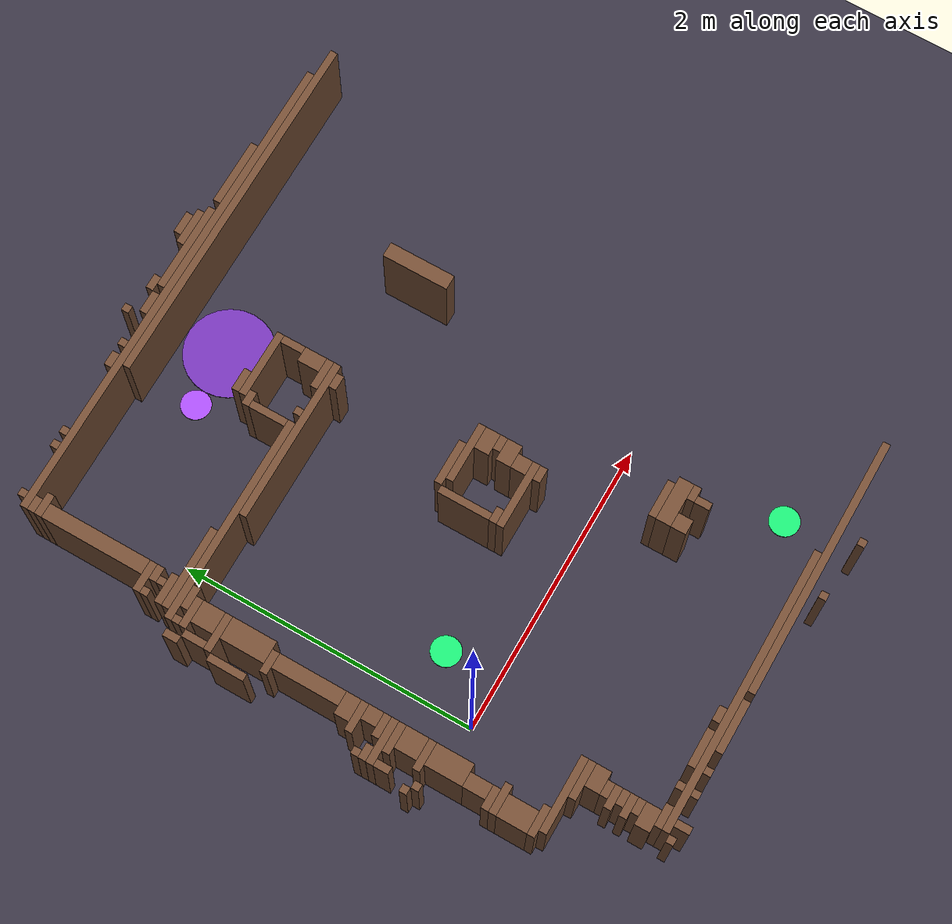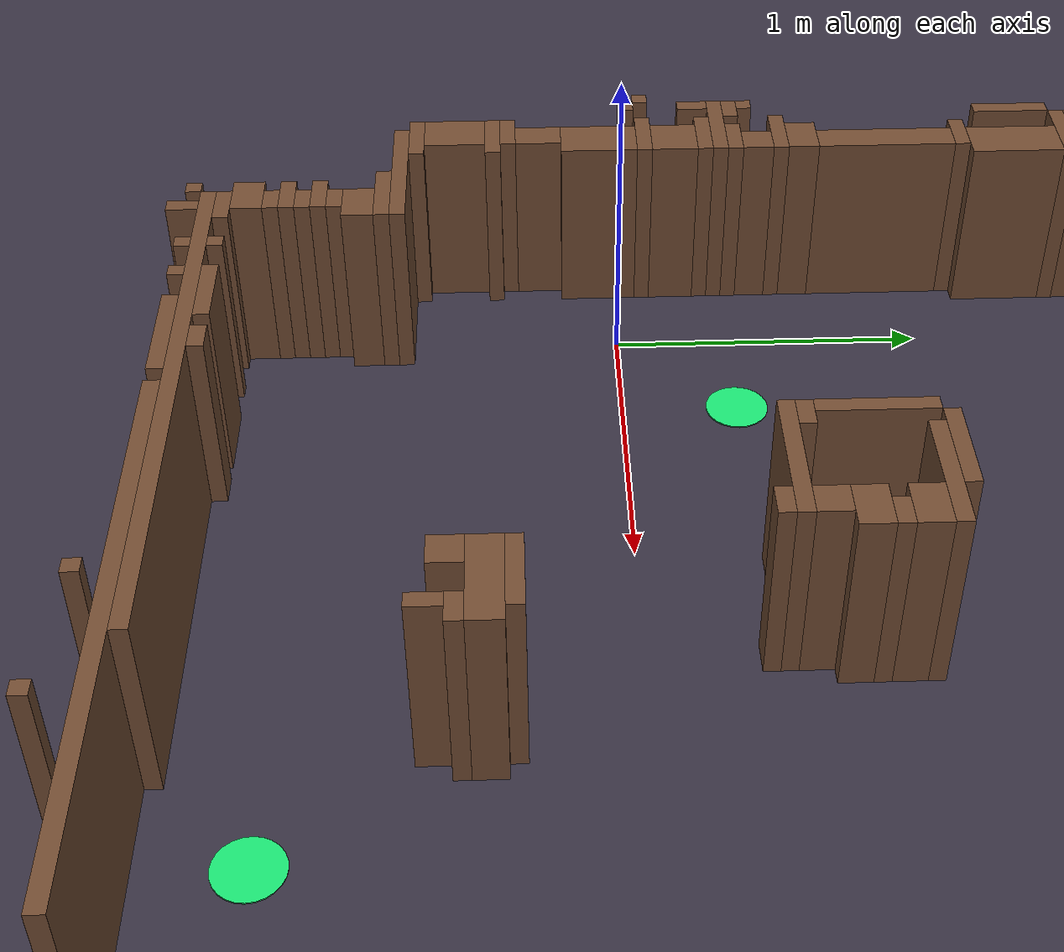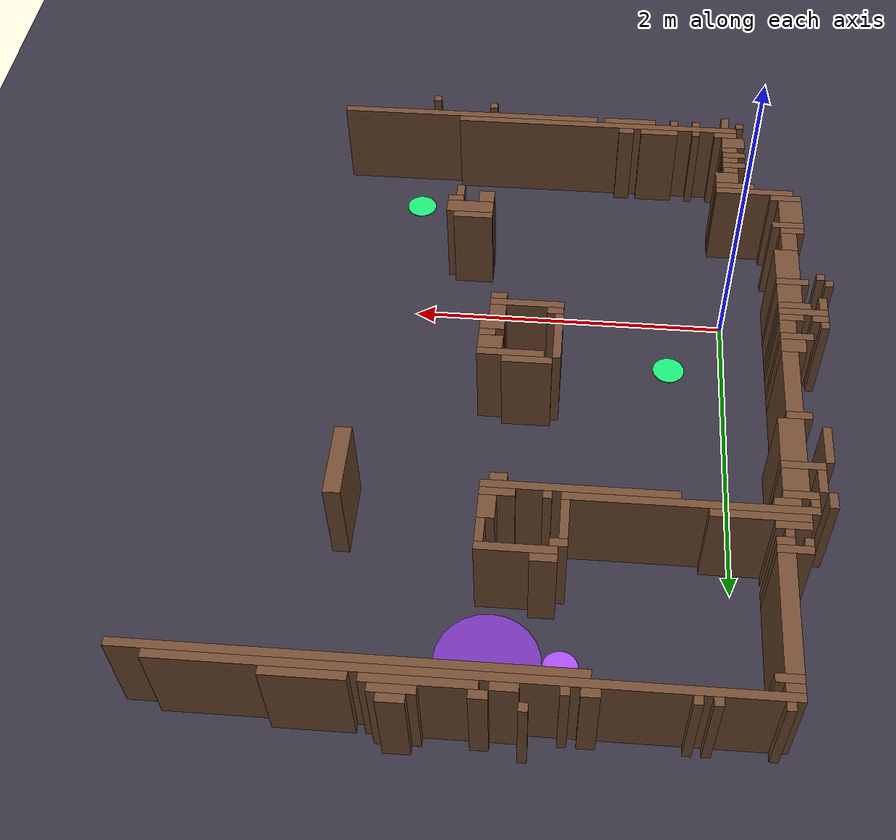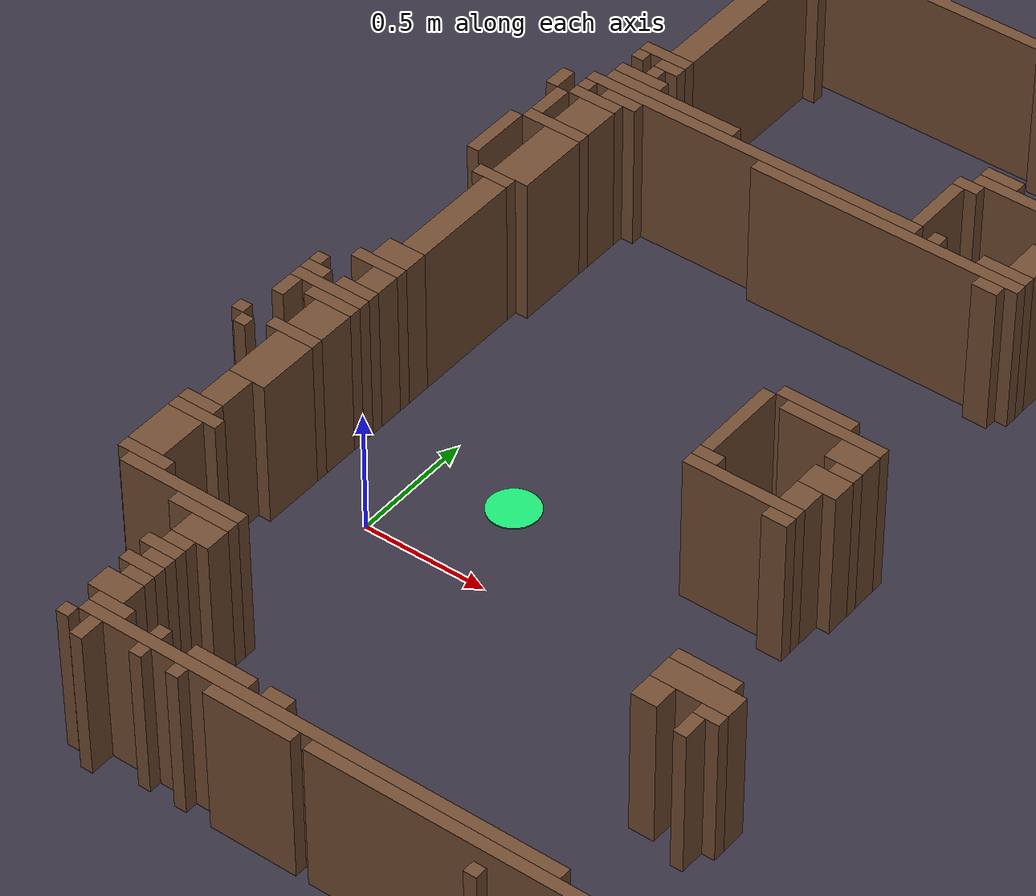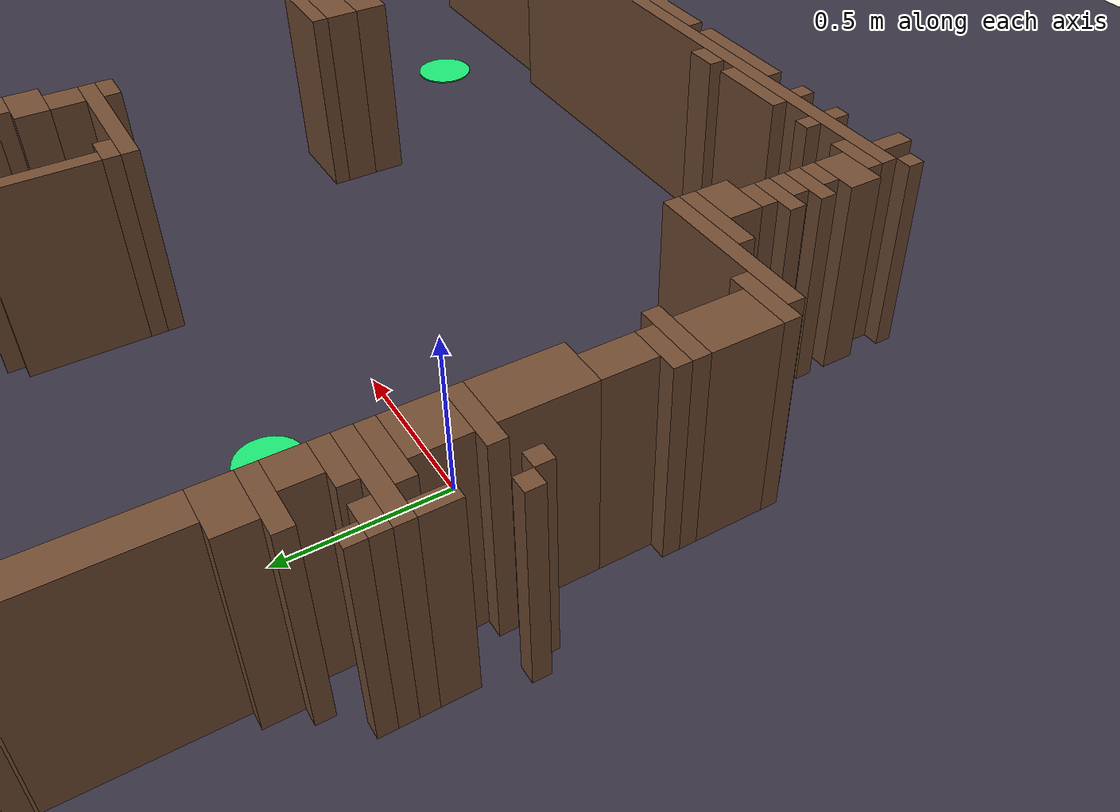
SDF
<sdf version="1.8">
 <world name="holloween">
  <model name="ground_plane">
   <static>true</static>
   <link name="link">
    <collision name="collision">
     <geometry><plane><normal>0 0 1</normal><size>100 100</size></plane></geometry>
    </collision>
    <visual name="visual">
     <geometry><plane><normal>0 0 1</normal><size>100 100</size></plane></geometry>
     <material><ambient>0.22 0.2 0.26 1</ambient><diffuse>0.22 0.2 0.26 1</diffuse></material>
    </visual>
   </link>
  </model>
  <model name="wall_0">
   <static>true</static>
   <pose>1.103 3.049 0.300 0 0 0</pose>
   <link name="l">
    <collision name="c"><geometry><box><size>0.050 0.050 0.600</size></box></geometry></collision>
    <visual name="v">
     <geometry><box><size>0.050 0.050 0.600</size></box></geometry>
     <material><ambient>0.45 0.3 0.2 1</ambient><diffuse>0.45 0.3 0.2 1</diffuse></material>
    </visual>
   </link>
  </model>
  <model name="wall_1">
   <static>true</static>
   <pose>1.753 3.049 0.300 0 0 0</pose>
   <link name="l">
    <collision name="c"><geometry><box><size>0.150 0.050 0.600</size></box></geometry></collision>
    <visual name="v">
     <geometry><box><size>0.150 0.050 0.600</size></box></geometry>
     <material><ambient>0.45 0.3 0.2 1</ambient><diffuse>0.45 0.3 0.2 1</diffuse></material>
    </visual>
   </link>
  </model>
  <model name="wall_2">
   <static>true</static>
   <pose>1.328 2.999 0.300 0 0 0</pose>
   <link name="l">
    <collision name="c"><geometry><box><size>0.100 0.050 0.600</size></box></geometry></collision>
    <visual name="v">
     <geometry><box><size>0.100 0.050 0.600</size></box></geometry>
     <material><ambient>0.45 0.3 0.2 1</ambient><diffuse>0.45 0.3 0.2 1</diffuse></material>
    </visual>
   </link>
  </model>
  <model name="wall_3">
   <static>true</static>
   <pose>1.753 2.999 0.300 0 0 0</pose>
   <link name="l">
    <collision name="c"><geometry><box><size>0.250 0.050 0.600</size></box></geometry></collision>
    <visual name="v">
     <geometry><box><size>0.250 0.050 0.600</size></box></geometry>
     <material><ambient>0.45 0.3 0.2 1</ambient><diffuse>0.45 0.3 0.2 1</diffuse></material>
    </visual>
   </link>
  </model>
  <model name="wall_4">
   <static>true</static>
   <pose>-0.197 2.949 0.300 0 0 0</pose>
   <link name="l">
    <collision name="c"><geometry><box><size>0.050 0.050 0.600</size></box></geometry></collision>
    <visual name="v">
     <geometry><box><size>0.050 0.050 0.600</size></box></geometry>
     <material><ambient>0.45 0.3 0.2 1</ambient><diffuse>0.45 0.3 0.2 1</diffuse></material>
    </visual>
   </link>
  </model>
  <model name="wall_6">
   <static>true</static>
   <pose>1.628 2.949 0.300 0 0 0</pose>
   <link name="l">
    <collision name="c"><geometry><box><size>0.600 0.050 0.600</size></box></geometry></collision>
    <visual name="v">
     <geometry><box><size>0.600 0.050 0.600</size></box></geometry>
     <material><ambient>0.45 0.3 0.2 1</ambient><diffuse>0.45 0.3 0.2 1</diffuse></material>
    </visual>
   </link>
  </model>
  <model name="wall_7">
   <static>true</static>
   <pose>1.203 2.949 0.300 0 0 0</pose>
   <link name="l">
    <collision name="c"><geometry><box><size>0.150 0.050 0.600</size></box></geometry></collision>
    <visual name="v">
     <geometry><box><size>0.150 0.050 0.600</size></box></geometry>
     <material><ambient>0.45 0.3 0.2 1</ambient><diffuse>0.45 0.3 0.2 1</diffuse></material>
    </visual>
   </link>
  </model>
  <model name="wall_8">
   <static>true</static>
   <pose>2.203 2.949 0.300 0 0 0</pose>
   <link name="l">
    <collision name="c"><geometry><box><size>0.450 0.050 0.600</size></box></geometry></collision>
    <visual name="v">
     <geometry><box><size>0.450 0.050 0.600</size></box></geometry>
     <material><ambient>0.45 0.3 0.2 1</ambient><diffuse>0.45 0.3 0.2 1</diffuse></material>
    </visual>
   </link>
  </model>
  <model name="wall_9">
   <static>true</static>
   <pose>0.253 2.949 0.300 0 0 0</pose>
   <link name="l">
    <collision name="c"><geometry><box><size>0.050 0.050 0.600</size></box></geometry></collision>
    <visual name="v">
     <geometry><box><size>0.050 0.050 0.600</size></box></geometry>
     <material><ambient>0.45 0.3 0.2 1</ambient><diffuse>0.45 0.3 0.2 1</diffuse></material>
    </visual>
   </link>
  </model>
  <model name="wall_10">
   <static>true</static>
   <pose>0.903 2.949 0.300 0 0 0</pose>
   <link name="l">
    <collision name="c"><geometry><box><size>0.050 0.050 0.600</size></box></geometry></collision>
    <visual name="v">
     <geometry><box><size>0.050 0.050 0.600</size></box></geometry>
     <material><ambient>0.45 0.3 0.2 1</ambient><diffuse>0.45 0.3 0.2 1</diffuse></material>
    </visual>
   </link>
  </model>
  <model name="wall_11">
   <static>true</static>
   <pose>0.778 2.949 0.300 0 0 0</pose>
   <link name="l">
    <collision name="c"><geometry><box><size>0.100 0.050 0.600</size></box></geometry></collision>
    <visual name="v">
     <geometry><box><size>0.100 0.050 0.600</size></box></geometry>
     <material><ambient>0.45 0.3 0.2 1</ambient><diffuse>0.45 0.3 0.2 1</diffuse></material>
    </visual>
   </link>
  </model>
  <model name="wall_12">
   <static>true</static>
   <pose>0.153 2.949 0.300 0 0 0</pose>
   <link name="l">
    <collision name="c"><geometry><box><size>0.050 0.050 0.600</size></box></geometry></collision>
    <visual name="v">
     <geometry><box><size>0.050 0.050 0.600</size></box></geometry>
     <material><ambient>0.45 0.3 0.2 1</ambient><diffuse>0.45 0.3 0.2 1</diffuse></material>
    </visual>
   </link>
  </model>
  <model name="wall_13">
   <static>true</static>
   <pose>1.378 2.899 0.300 0 0 0</pose>
   <link name="l">
    <collision name="c"><geometry><box><size>3.300 0.050 0.600</size></box></geometry></collision>
    <visual name="v">
     <geometry><box><size>3.300 0.050 0.600</size></box></geometry>
     <material><ambient>0.45 0.3 0.2 1</ambient><diffuse>0.45 0.3 0.2 1</diffuse></material>
    </visual>
   </link>
  </model>
  <model name="wall_14">
   <static>true</static>
   <pose>2.003 2.849 0.300 0 0 0</pose>
   <link name="l">
    <collision name="c"><geometry><box><size>2.450 0.050 0.600</size></box></geometry></collision>
    <visual name="v">
     <geometry><box><size>2.450 0.050 0.600</size></box></geometry>
     <material><ambient>0.45 0.3 0.2 1</ambient><diffuse>0.45 0.3 0.2 1</diffuse></material>
    </visual>
   </link>
  </model>
  <model name="wall_15">
   <static>true</static>
   <pose>-0.222 2.849 0.300 0 0 0</pose>
   <link name="l">
    <collision name="c"><geometry><box><size>0.100 0.050 0.600</size></box></geometry></collision>
    <visual name="v">
     <geometry><box><size>0.100 0.050 0.600</size></box></geometry>
     <material><ambient>0.45 0.3 0.2 1</ambient><diffuse>0.45 0.3 0.2 1</diffuse></material>
    </visual>
   </link>
  </model>
  <model name="wall_16">
   <static>true</static>
   <pose>-0.197 2.799 0.300 0 0 0</pose>
   <link name="l">
    <collision name="c"><geometry><box><size>0.150 0.050 0.600</size></box></geometry></collision>
    <visual name="v">
     <geometry><box><size>0.150 0.050 0.600</size></box></geometry>
     <material><ambient>0.45 0.3 0.2 1</ambient><diffuse>0.45 0.3 0.2 1</diffuse></material>
    </visual>
   </link>
  </model>
  <model name="wall_23">
   <static>true</static>
   <pose>1.053 2.199 0.300 0 0 0</pose>
   <link name="l">
    <collision name="c"><geometry><box><size>0.150 0.050 0.600</size></box></geometry></collision>
    <visual name="v">
     <geometry><box><size>0.150 0.050 0.600</size></box></geometry>
     <material><ambient>0.45 0.3 0.2 1</ambient><diffuse>0.45 0.3 0.2 1</diffuse></material>
    </visual>
   </link>
  </model>
  <model name="wall_24">
   <static>true</static>
   <pose>1.203 2.149 0.300 0 0 0</pose>
   <link name="l">
    <collision name="c"><geometry><box><size>0.450 0.050 0.600</size></box></geometry></collision>
    <visual name="v">
     <geometry><box><size>0.450 0.050 0.600</size></box></geometry>
     <material><ambient>0.45 0.3 0.2 1</ambient><diffuse>0.45 0.3 0.2 1</diffuse></material>
    </visual>
   </link>
  </model>
  <model name="wall_25">
   <static>true</static>
   <pose>-0.222 2.424 0.300 0 0 0</pose>
   <link name="l">
    <collision name="c"><geometry><box><size>0.100 0.700 0.600</size></box></geometry></collision>
    <visual name="v">
     <geometry><box><size>0.100 0.700 0.600</size></box></geometry>
     <material><ambient>0.45 0.3 0.2 1</ambient><diffuse>0.45 0.3 0.2 1</diffuse></material>
    </visual>
   </link>
  </model>
  <model name="wall_27">
   <static>true</static>
   <pose>0.978 2.099 0.300 0 0 0</pose>
   <link name="l">
    <collision name="c"><geometry><box><size>0.100 0.050 0.600</size></box></geometry></collision>
    <visual name="v">
     <geometry><box><size>0.100 0.050 0.600</size></box></geometry>
     <material><ambient>0.45 0.3 0.2 1</ambient><diffuse>0.45 0.3 0.2 1</diffuse></material>
    </visual>
   </link>
  </model>
  <model name="wall_29">
   <static>true</static>
   <pose>-0.272 2.049 0.300 0 0 0</pose>
   <link name="l">
    <collision name="c"><geometry><box><size>0.200 0.050 0.600</size></box></geometry></collision>
    <visual name="v">
     <geometry><box><size>0.200 0.050 0.600</size></box></geometry>
     <material><ambient>0.45 0.3 0.2 1</ambient><diffuse>0.45 0.3 0.2 1</diffuse></material>
    </visual>
   </link>
  </model>
  <model name="wall_32">
   <static>true</static>
   <pose>1.403 2.049 0.300 0 0 0</pose>
   <link name="l">
    <collision name="c"><geometry><box><size>0.050 0.150 0.600</size></box></geometry></collision>
    <visual name="v">
     <geometry><box><size>0.050 0.150 0.600</size></box></geometry>
     <material><ambient>0.45 0.3 0.2 1</ambient><diffuse>0.45 0.3 0.2 1</diffuse></material>
    </visual>
   </link>
  </model>
  <model name="wall_33">
   <static>true</static>
   <pose>-0.222 1.999 0.300 0 0 0</pose>
   <link name="l">
    <collision name="c"><geometry><box><size>0.100 0.050 0.600</size></box></geometry></collision>
    <visual name="v">
     <geometry><box><size>0.100 0.050 0.600</size></box></geometry>
     <material><ambient>0.45 0.3 0.2 1</ambient><diffuse>0.45 0.3 0.2 1</diffuse></material>
    </visual>
   </link>
  </model>
  <model name="wall_34">
   <static>true</static>
   <pose>-0.347 1.999 0.300 0 0 0</pose>
   <link name="l">
    <collision name="c"><geometry><box><size>0.050 0.050 0.600</size></box></geometry></collision>
    <visual name="v">
     <geometry><box><size>0.050 0.050 0.600</size></box></geometry>
     <material><ambient>0.45 0.3 0.2 1</ambient><diffuse>0.45 0.3 0.2 1</diffuse></material>
    </visual>
   </link>
  </model>
  <model name="wall_36">
   <static>true</static>
   <pose>-0.247 1.949 0.300 0 0 0</pose>
   <link name="l">
    <collision name="c"><geometry><box><size>0.050 0.050 0.600</size></box></geometry></collision>
    <visual name="v">
     <geometry><box><size>0.050 0.050 0.600</size></box></geometry>
     <material><ambient>0.45 0.3 0.2 1</ambient><diffuse>0.45 0.3 0.2 1</diffuse></material>
    </visual>
   </link>
  </model>
  <model name="wall_41">
   <static>true</static>
   <pose>-0.272 1.899 0.300 0 0 0</pose>
   <link name="l">
    <collision name="c"><geometry><box><size>0.200 0.050 0.600</size></box></geometry></collision>
    <visual name="v">
     <geometry><box><size>0.200 0.050 0.600</size></box></geometry>
     <material><ambient>0.45 0.3 0.2 1</ambient><diffuse>0.45 0.3 0.2 1</diffuse></material>
    </visual>
   </link>
  </model>
  <model name="wall_44">
   <static>true</static>
   <pose>0.953 1.949 0.300 0 0 0</pose>
   <link name="l">
    <collision name="c"><geometry><box><size>0.050 0.250 0.600</size></box></geometry></collision>
    <visual name="v">
     <geometry><box><size>0.050 0.250 0.600</size></box></geometry>
     <material><ambient>0.45 0.3 0.2 1</ambient><diffuse>0.45 0.3 0.2 1</diffuse></material>
    </visual>
   </link>
  </model>
  <model name="wall_45">
   <static>true</static>
   <pose>1.378 1.899 0.300 0 0 0</pose>
   <link name="l">
    <collision name="c"><geometry><box><size>0.100 0.150 0.600</size></box></geometry></collision>
    <visual name="v">
     <geometry><box><size>0.100 0.150 0.600</size></box></geometry>
     <material><ambient>0.45 0.3 0.2 1</ambient><diffuse>0.45 0.3 0.2 1</diffuse></material>
    </visual>
   </link>
  </model>
  <model name="wall_46">
   <static>true</static>
   <pose>-0.097 1.849 0.300 0 0 0</pose>
   <link name="l">
    <collision name="c"><geometry><box><size>0.550 0.050 0.600</size></box></geometry></collision>
    <visual name="v">
     <geometry><box><size>0.550 0.050 0.600</size></box></geometry>
     <material><ambient>0.45 0.3 0.2 1</ambient><diffuse>0.45 0.3 0.2 1</diffuse></material>
    </visual>
   </link>
  </model>
  <model name="wall_48">
   <static>true</static>
   <pose>1.328 1.799 0.300 0 0 0</pose>
   <link name="l">
    <collision name="c"><geometry><box><size>0.200 0.050 0.600</size></box></geometry></collision>
    <visual name="v">
     <geometry><box><size>0.200 0.050 0.600</size></box></geometry>
     <material><ambient>0.45 0.3 0.2 1</ambient><diffuse>0.45 0.3 0.2 1</diffuse></material>
    </visual>
   </link>
  </model>
  <model name="wall_49">
   <static>true</static>
   <pose>0.278 1.799 0.300 0 0 0</pose>
   <link name="l">
    <collision name="c"><geometry><box><size>1.400 0.050 0.600</size></box></geometry></collision>
    <visual name="v">
     <geometry><box><size>1.400 0.050 0.600</size></box></geometry>
     <material><ambient>0.45 0.3 0.2 1</ambient><diffuse>0.45 0.3 0.2 1</diffuse></material>
    </visual>
   </link>
  </model>
  <model name="wall_50">
   <static>true</static>
   <pose>1.053 1.799 0.300 0 0 0</pose>
   <link name="l">
    <collision name="c"><geometry><box><size>0.050 0.050 0.600</size></box></geometry></collision>
    <visual name="v">
     <geometry><box><size>0.050 0.050 0.600</size></box></geometry>
     <material><ambient>0.45 0.3 0.2 1</ambient><diffuse>0.45 0.3 0.2 1</diffuse></material>
    </visual>
   </link>
  </model>
  <model name="wall_52">
   <static>true</static>
   <pose>-0.247 1.749 0.300 0 0 0</pose>
   <link name="l">
    <collision name="c"><geometry><box><size>0.150 0.050 0.600</size></box></geometry></collision>
    <visual name="v">
     <geometry><box><size>0.150 0.050 0.600</size></box></geometry>
     <material><ambient>0.45 0.3 0.2 1</ambient><diffuse>0.45 0.3 0.2 1</diffuse></material>
    </visual>
   </link>
  </model>
  <model name="wall_54">
   <static>true</static>
   <pose>0.878 1.749 0.300 0 0 0</pose>
   <link name="l">
    <collision name="c"><geometry><box><size>1.100 0.050 0.600</size></box></geometry></collision>
    <visual name="v">
     <geometry><box><size>1.100 0.050 0.600</size></box></geometry>
     <material><ambient>0.45 0.3 0.2 1</ambient><diffuse>0.45 0.3 0.2 1</diffuse></material>
    </visual>
   </link>
  </model>
  <model name="wall_55">
   <static>true</static>
   <pose>-0.397 1.749 0.300 0 0 0</pose>
   <link name="l">
    <collision name="c"><geometry><box><size>0.050 0.050 0.600</size></box></geometry></collision>
    <visual name="v">
     <geometry><box><size>0.050 0.050 0.600</size></box></geometry>
     <material><ambient>0.45 0.3 0.2 1</ambient><diffuse>0.45 0.3 0.2 1</diffuse></material>
    </visual>
   </link>
  </model>
  <model name="wall_56">
   <static>true</static>
   <pose>-0.497 1.724 0.300 0 0 0</pose>
   <link name="l">
    <collision name="c"><geometry><box><size>0.050 0.100 0.600</size></box></geometry></collision>
    <visual name="v">
     <geometry><box><size>0.050 0.100 0.600</size></box></geometry>
     <material><ambient>0.45 0.3 0.2 1</ambient><diffuse>0.45 0.3 0.2 1</diffuse></material>
    </visual>
   </link>
  </model>
  <model name="wall_57">
   <static>true</static>
   <pose>-0.322 1.699 0.300 0 0 0</pose>
   <link name="l">
    <collision name="c"><geometry><box><size>0.200 0.050 0.600</size></box></geometry></collision>
    <visual name="v">
     <geometry><box><size>0.200 0.050 0.600</size></box></geometry>
     <material><ambient>0.45 0.3 0.2 1</ambient><diffuse>0.45 0.3 0.2 1</diffuse></material>
    </visual>
   </link>
  </model>
  <model name="wall_58">
   <static>true</static>
   <pose>1.328 1.699 0.300 0 0 0</pose>
   <link name="l">
    <collision name="c"><geometry><box><size>0.100 0.050 0.600</size></box></geometry></collision>
    <visual name="v">
     <geometry><box><size>0.100 0.050 0.600</size></box></geometry>
     <material><ambient>0.45 0.3 0.2 1</ambient><diffuse>0.45 0.3 0.2 1</diffuse></material>
    </visual>
   </link>
  </model>
  <model name="wall_60">
   <static>true</static>
   <pose>-0.447 1.599 0.300 0 0 0</pose>
   <link name="l">
    <collision name="c"><geometry><box><size>0.050 0.150 0.600</size></box></geometry></collision>
    <visual name="v">
     <geometry><box><size>0.050 0.150 0.600</size></box></geometry>
     <material><ambient>0.45 0.3 0.2 1</ambient><diffuse>0.45 0.3 0.2 1</diffuse></material>
    </visual>
   </link>
  </model>
  <model name="wall_61">
   <static>true</static>
   <pose>-0.297 1.599 0.300 0 0 0</pose>
   <link name="l">
    <collision name="c"><geometry><box><size>0.150 0.150 0.600</size></box></geometry></collision>
    <visual name="v">
     <geometry><box><size>0.150 0.150 0.600</size></box></geometry>
     <material><ambient>0.45 0.3 0.2 1</ambient><diffuse>0.45 0.3 0.2 1</diffuse></material>
    </visual>
   </link>
  </model>
  <model name="wall_62">
   <static>true</static>
   <pose>-0.347 1.499 0.300 0 0 0</pose>
   <link name="l">
    <collision name="c"><geometry><box><size>0.250 0.050 0.600</size></box></geometry></collision>
    <visual name="v">
     <geometry><box><size>0.250 0.050 0.600</size></box></geometry>
     <material><ambient>0.45 0.3 0.2 1</ambient><diffuse>0.45 0.3 0.2 1</diffuse></material>
    </visual>
   </link>
  </model>
  <model name="wall_63">
   <static>true</static>
   <pose>2.228 1.649 0.300 0 0 0</pose>
   <link name="l">
    <collision name="c"><geometry><box><size>0.100 0.450 0.600</size></box></geometry></collision>
    <visual name="v">
     <geometry><box><size>0.100 0.450 0.600</size></box></geometry>
     <material><ambient>0.45 0.3 0.2 1</ambient><diffuse>0.45 0.3 0.2 1</diffuse></material>
    </visual>
   </link>
  </model>
  <model name="wall_68">
   <static>true</static>
   <pose>-0.497 1.349 0.300 0 0 0</pose>
   <link name="l">
    <collision name="c"><geometry><box><size>0.050 0.250 0.600</size></box></geometry></collision>
    <visual name="v">
     <geometry><box><size>0.050 0.250 0.600</size></box></geometry>
     <material><ambient>0.45 0.3 0.2 1</ambient><diffuse>0.45 0.3 0.2 1</diffuse></material>
    </visual>
   </link>
  </model>
  <model name="wall_69">
   <static>true</static>
   <pose>-0.297 1.324 0.300 0 0 0</pose>
   <link name="l">
    <collision name="c"><geometry><box><size>0.150 0.300 0.600</size></box></geometry></collision>
    <visual name="v">
     <geometry><box><size>0.150 0.300 0.600</size></box></geometry>
     <material><ambient>0.45 0.3 0.2 1</ambient><diffuse>0.45 0.3 0.2 1</diffuse></material>
    </visual>
   </link>
  </model>
  <model name="wall_73">
   <static>true</static>
   <pose>-0.347 1.149 0.300 0 0 0</pose>
   <link name="l">
    <collision name="c"><geometry><box><size>0.150 0.050 0.600</size></box></geometry></collision>
    <visual name="v">
     <geometry><box><size>0.150 0.050 0.600</size></box></geometry>
     <material><ambient>0.45 0.3 0.2 1</ambient><diffuse>0.45 0.3 0.2 1</diffuse></material>
    </visual>
   </link>
  </model>
  <model name="wall_78">
   <static>true</static>
   <pose>1.228 0.849 0.300 0 0 0</pose>
   <link name="l">
    <collision name="c"><geometry><box><size>0.300 0.050 0.600</size></box></geometry></collision>
    <visual name="v">
     <geometry><box><size>0.300 0.050 0.600</size></box></geometry>
     <material><ambient>0.45 0.3 0.2 1</ambient><diffuse>0.45 0.3 0.2 1</diffuse></material>
    </visual>
   </link>
  </model>
  <model name="wall_79">
   <static>true</static>
   <pose>1.328 0.799 0.300 0 0 0</pose>
   <link name="l">
    <collision name="c"><geometry><box><size>0.400 0.050 0.600</size></box></geometry></collision>
    <visual name="v">
     <geometry><box><size>0.400 0.050 0.600</size></box></geometry>
     <material><ambient>0.45 0.3 0.2 1</ambient><diffuse>0.45 0.3 0.2 1</diffuse></material>
    </visual>
   </link>
  </model>
  <model name="wall_80">
   <static>true</static>
   <pose>-0.322 0.899 0.300 0 0 0</pose>
   <link name="l">
    <collision name="c"><geometry><box><size>0.100 0.450 0.600</size></box></geometry></collision>
    <visual name="v">
     <geometry><box><size>0.100 0.450 0.600</size></box></geometry>
     <material><ambient>0.45 0.3 0.2 1</ambient><diffuse>0.45 0.3 0.2 1</diffuse></material>
    </visual>
   </link>
  </model>
  <model name="wall_81">
   <static>true</static>
   <pose>1.453 0.724 0.300 0 0 0</pose>
   <link name="l">
    <collision name="c"><geometry><box><size>0.150 0.100 0.600</size></box></geometry></collision>
    <visual name="v">
     <geometry><box><size>0.150 0.100 0.600</size></box></geometry>
     <material><ambient>0.45 0.3 0.2 1</ambient><diffuse>0.45 0.3 0.2 1</diffuse></material>
    </visual>
   </link>
  </model>
  <model name="wall_82">
   <static>true</static>
   <pose>1.478 0.649 0.300 0 0 0</pose>
   <link name="l">
    <collision name="c"><geometry><box><size>0.100 0.050 0.600</size></box></geometry></collision>
    <visual name="v">
     <geometry><box><size>0.100 0.050 0.600</size></box></geometry>
     <material><ambient>0.45 0.3 0.2 1</ambient><diffuse>0.45 0.3 0.2 1</diffuse></material>
    </visual>
   </link>
  </model>
  <model name="wall_83">
   <static>true</static>
   <pose>-0.347 0.624 0.300 0 0 0</pose>
   <link name="l">
    <collision name="c"><geometry><box><size>0.150 0.100 0.600</size></box></geometry></collision>
    <visual name="v">
     <geometry><box><size>0.150 0.100 0.600</size></box></geometry>
     <material><ambient>0.45 0.3 0.2 1</ambient><diffuse>0.45 0.3 0.2 1</diffuse></material>
    </visual>
   </link>
  </model>
  <model name="wall_85">
   <static>true</static>
   <pose>1.453 0.574 0.300 0 0 0</pose>
   <link name="l">
    <collision name="c"><geometry><box><size>0.150 0.100 0.600</size></box></geometry></collision>
    <visual name="v">
     <geometry><box><size>0.150 0.100 0.600</size></box></geometry>
     <material><ambient>0.45 0.3 0.2 1</ambient><diffuse>0.45 0.3 0.2 1</diffuse></material>
    </visual>
   </link>
  </model>
  <model name="wall_86">
   <static>true</static>
   <pose>-0.372 0.549 0.300 0 0 0</pose>
   <link name="l">
    <collision name="c"><geometry><box><size>0.200 0.050 0.600</size></box></geometry></collision>
    <visual name="v">
     <geometry><box><size>0.200 0.050 0.600</size></box></geometry>
     <material><ambient>0.45 0.3 0.2 1</ambient><diffuse>0.45 0.3 0.2 1</diffuse></material>
    </visual>
   </link>
  </model>
  <model name="wall_87">
   <static>true</static>
   <pose>1.053 0.649 0.300 0 0 0</pose>
   <link name="l">
    <collision name="c"><geometry><box><size>0.050 0.350 0.600</size></box></geometry></collision>
    <visual name="v">
     <geometry><box><size>0.050 0.350 0.600</size></box></geometry>
     <material><ambient>0.45 0.3 0.2 1</ambient><diffuse>0.45 0.3 0.2 1</diffuse></material>
    </visual>
   </link>
  </model>
  <model name="wall_89">
   <static>true</static>
   <pose>-0.322 0.474 0.300 0 0 0</pose>
   <link name="l">
    <collision name="c"><geometry><box><size>0.100 0.100 0.600</size></box></geometry></collision>
    <visual name="v">
     <geometry><box><size>0.100 0.100 0.600</size></box></geometry>
     <material><ambient>0.45 0.3 0.2 1</ambient><diffuse>0.45 0.3 0.2 1</diffuse></material>
    </visual>
   </link>
  </model>
  <model name="wall_90">
   <static>true</static>
   <pose>1.428 0.474 0.300 0 0 0</pose>
   <link name="l">
    <collision name="c"><geometry><box><size>0.100 0.100 0.600</size></box></geometry></collision>
    <visual name="v">
     <geometry><box><size>0.100 0.100 0.600</size></box></geometry>
     <material><ambient>0.45 0.3 0.2 1</ambient><diffuse>0.45 0.3 0.2 1</diffuse></material>
    </visual>
   </link>
  </model>
  <model name="wall_91">
   <static>true</static>
   <pose>1.078 0.449 0.300 0 0 0</pose>
   <link name="l">
    <collision name="c"><geometry><box><size>0.100 0.050 0.600</size></box></geometry></collision>
    <visual name="v">
     <geometry><box><size>0.100 0.050 0.600</size></box></geometry>
     <material><ambient>0.45 0.3 0.2 1</ambient><diffuse>0.45 0.3 0.2 1</diffuse></material>
    </visual>
   </link>
  </model>
  <model name="wall_92">
   <static>true</static>
   <pose>-0.547 0.449 0.300 0 0 0</pose>
   <link name="l">
    <collision name="c"><geometry><box><size>0.050 0.050 0.600</size></box></geometry></collision>
    <visual name="v">
     <geometry><box><size>0.050 0.050 0.600</size></box></geometry>
     <material><ambient>0.45 0.3 0.2 1</ambient><diffuse>0.45 0.3 0.2 1</diffuse></material>
    </visual>
   </link>
  </model>
  <model name="wall_95">
   <static>true</static>
   <pose>1.253 0.399 0.300 0 0 0</pose>
   <link name="l">
    <collision name="c"><geometry><box><size>0.450 0.050 0.600</size></box></geometry></collision>
    <visual name="v">
     <geometry><box><size>0.450 0.050 0.600</size></box></geometry>
     <material><ambient>0.45 0.3 0.2 1</ambient><diffuse>0.45 0.3 0.2 1</diffuse></material>
    </visual>
   </link>
  </model>
  <model name="wall_96">
   <static>true</static>
   <pose>-0.522 0.399 0.300 0 0 0</pose>
   <link name="l">
    <collision name="c"><geometry><box><size>0.100 0.050 0.600</size></box></geometry></collision>
    <visual name="v">
     <geometry><box><size>0.100 0.050 0.600</size></box></geometry>
     <material><ambient>0.45 0.3 0.2 1</ambient><diffuse>0.45 0.3 0.2 1</diffuse></material>
    </visual>
   </link>
  </model>
  <model name="wall_97">
   <static>true</static>
   <pose>-0.347 0.399 0.300 0 0 0</pose>
   <link name="l">
    <collision name="c"><geometry><box><size>0.150 0.050 0.600</size></box></geometry></collision>
    <visual name="v">
     <geometry><box><size>0.150 0.050 0.600</size></box></geometry>
     <material><ambient>0.45 0.3 0.2 1</ambient><diffuse>0.45 0.3 0.2 1</diffuse></material>
    </visual>
   </link>
  </model>
  <model name="wall_100">
   <static>true</static>
   <pose>1.428 0.349 0.300 0 0 0</pose>
   <link name="l">
    <collision name="c"><geometry><box><size>0.100 0.050 0.600</size></box></geometry></collision>
    <visual name="v">
     <geometry><box><size>0.100 0.050 0.600</size></box></geometry>
     <material><ambient>0.45 0.3 0.2 1</ambient><diffuse>0.45 0.3 0.2 1</diffuse></material>
    </visual>
   </link>
  </model>
  <model name="wall_102">
   <static>true</static>
   <pose>-0.422 0.349 0.300 0 0 0</pose>
   <link name="l">
    <collision name="c"><geometry><box><size>0.300 0.050 0.600</size></box></geometry></collision>
    <visual name="v">
     <geometry><box><size>0.300 0.050 0.600</size></box></geometry>
     <material><ambient>0.45 0.3 0.2 1</ambient><diffuse>0.45 0.3 0.2 1</diffuse></material>
    </visual>
   </link>
  </model>
  <model name="wall_105">
   <static>true</static>
   <pose>-0.372 0.299 0.300 0 0 0</pose>
   <link name="l">
    <collision name="c"><geometry><box><size>0.200 0.050 0.600</size></box></geometry></collision>
    <visual name="v">
     <geometry><box><size>0.200 0.050 0.600</size></box></geometry>
     <material><ambient>0.45 0.3 0.2 1</ambient><diffuse>0.45 0.3 0.2 1</diffuse></material>
    </visual>
   </link>
  </model>
  <model name="wall_107">
   <static>true</static>
   <pose>-0.547 0.274 0.300 0 0 0</pose>
   <link name="l">
    <collision name="c"><geometry><box><size>0.050 0.100 0.600</size></box></geometry></collision>
    <visual name="v">
     <geometry><box><size>0.050 0.100 0.600</size></box></geometry>
     <material><ambient>0.45 0.3 0.2 1</ambient><diffuse>0.45 0.3 0.2 1</diffuse></material>
    </visual>
   </link>
  </model>
  <model name="wall_112">
   <static>true</static>
   <pose>-0.347 0.199 0.300 0 0 0</pose>
   <link name="l">
    <collision name="c"><geometry><box><size>0.150 0.150 0.600</size></box></geometry></collision>
    <visual name="v">
     <geometry><box><size>0.150 0.150 0.600</size></box></geometry>
     <material><ambient>0.45 0.3 0.2 1</ambient><diffuse>0.45 0.3 0.2 1</diffuse></material>
    </visual>
   </link>
  </model>
  <model name="wall_117">
   <static>true</static>
   <pose>-0.597 0.099 0.300 0 0 0</pose>
   <link name="l">
    <collision name="c"><geometry><box><size>0.050 0.050 0.600</size></box></geometry></collision>
    <visual name="v">
     <geometry><box><size>0.050 0.050 0.600</size></box></geometry>
     <material><ambient>0.45 0.3 0.2 1</ambient><diffuse>0.45 0.3 0.2 1</diffuse></material>
    </visual>
   </link>
  </model>
  <model name="wall_118">
   <static>true</static>
   <pose>-0.372 0.099 0.300 0 0 0</pose>
   <link name="l">
    <collision name="c"><geometry><box><size>0.200 0.050 0.600</size></box></geometry></collision>
    <visual name="v">
     <geometry><box><size>0.200 0.050 0.600</size></box></geometry>
     <material><ambient>0.45 0.3 0.2 1</ambient><diffuse>0.45 0.3 0.2 1</diffuse></material>
    </visual>
   </link>
  </model>
  <model name="wall_121">
   <static>true</static>
   <pose>-0.547 0.049 0.300 0 0 0</pose>
   <link name="l">
    <collision name="c"><geometry><box><size>0.050 0.050 0.600</size></box></geometry></collision>
    <visual name="v">
     <geometry><box><size>0.050 0.050 0.600</size></box></geometry>
     <material><ambient>0.45 0.3 0.2 1</ambient><diffuse>0.45 0.3 0.2 1</diffuse></material>
    </visual>
   </link>
  </model>
  <model name="wall_130">
   <static>true</static>
   <pose>-0.347 -0.051 0.300 0 0 0</pose>
   <link name="l">
    <collision name="c"><geometry><box><size>0.150 0.250 0.600</size></box></geometry></collision>
    <visual name="v">
     <geometry><box><size>0.150 0.250 0.600</size></box></geometry>
     <material><ambient>0.45 0.3 0.2 1</ambient><diffuse>0.45 0.3 0.2 1</diffuse></material>
    </visual>
   </link>
  </model>
  <model name="wall_137">
   <static>true</static>
   <pose>-0.372 -0.251 0.300 0 0 0</pose>
   <link name="l">
    <collision name="c"><geometry><box><size>0.100 0.150 0.600</size></box></geometry></collision>
    <visual name="v">
     <geometry><box><size>0.100 0.150 0.600</size></box></geometry>
     <material><ambient>0.45 0.3 0.2 1</ambient><diffuse>0.45 0.3 0.2 1</diffuse></material>
    </visual>
   </link>
  </model>
  <model name="wall_141">
   <static>true</static>
   <pose>-0.397 -0.351 0.300 0 0 0</pose>
   <link name="l">
    <collision name="c"><geometry><box><size>0.150 0.050 0.600</size></box></geometry></collision>
    <visual name="v">
     <geometry><box><size>0.150 0.050 0.600</size></box></geometry>
     <material><ambient>0.45 0.3 0.2 1</ambient><diffuse>0.45 0.3 0.2 1</diffuse></material>
    </visual>
   </link>
  </model>
  <model name="wall_142">
   <static>true</static>
   <pose>1.653 -0.351 0.300 0 0 0</pose>
   <link name="l">
    <collision name="c"><geometry><box><size>0.250 0.050 0.600</size></box></geometry></collision>
    <visual name="v">
     <geometry><box><size>0.250 0.050 0.600</size></box></geometry>
     <material><ambient>0.45 0.3 0.2 1</ambient><diffuse>0.45 0.3 0.2 1</diffuse></material>
    </visual>
   </link>
  </model>
  <model name="wall_143">
   <static>true</static>
   <pose>-0.372 -0.401 0.300 0 0 0</pose>
   <link name="l">
    <collision name="c"><geometry><box><size>0.200 0.050 0.600</size></box></geometry></collision>
    <visual name="v">
     <geometry><box><size>0.200 0.050 0.600</size></box></geometry>
     <material><ambient>0.45 0.3 0.2 1</ambient><diffuse>0.45 0.3 0.2 1</diffuse></material>
    </visual>
   </link>
  </model>
  <model name="wall_146">
   <static>true</static>
   <pose>1.678 -0.426 0.300 0 0 0</pose>
   <link name="l">
    <collision name="c"><geometry><box><size>0.300 0.100 0.600</size></box></geometry></collision>
    <visual name="v">
     <geometry><box><size>0.300 0.100 0.600</size></box></geometry>
     <material><ambient>0.45 0.3 0.2 1</ambient><diffuse>0.45 0.3 0.2 1</diffuse></material>
    </visual>
   </link>
  </model>
  <model name="wall_147">
   <static>true</static>
   <pose>1.778 -0.501 0.300 0 0 0</pose>
   <link name="l">
    <collision name="c"><geometry><box><size>0.100 0.050 0.600</size></box></geometry></collision>
    <visual name="v">
     <geometry><box><size>0.100 0.050 0.600</size></box></geometry>
     <material><ambient>0.45 0.3 0.2 1</ambient><diffuse>0.45 0.3 0.2 1</diffuse></material>
    </visual>
   </link>
  </model>
  <model name="wall_150">
   <static>true</static>
   <pose>1.578 -0.526 0.300 0 0 0</pose>
   <link name="l">
    <collision name="c"><geometry><box><size>0.100 0.100 0.600</size></box></geometry></collision>
    <visual name="v">
     <geometry><box><size>0.100 0.100 0.600</size></box></geometry>
     <material><ambient>0.45 0.3 0.2 1</ambient><diffuse>0.45 0.3 0.2 1</diffuse></material>
    </visual>
   </link>
  </model>
  <model name="wall_151">
   <static>true</static>
   <pose>-0.397 -0.526 0.300 0 0 0</pose>
   <link name="l">
    <collision name="c"><geometry><box><size>0.150 0.200 0.600</size></box></geometry></collision>
    <visual name="v">
     <geometry><box><size>0.150 0.200 0.600</size></box></geometry>
     <material><ambient>0.45 0.3 0.2 1</ambient><diffuse>0.45 0.3 0.2 1</diffuse></material>
    </visual>
   </link>
  </model>
  <model name="wall_152">
   <static>true</static>
   <pose>1.753 -0.576 0.300 0 0 0</pose>
   <link name="l">
    <collision name="c"><geometry><box><size>0.050 0.100 0.600</size></box></geometry></collision>
    <visual name="v">
     <geometry><box><size>0.050 0.100 0.600</size></box></geometry>
     <material><ambient>0.45 0.3 0.2 1</ambient><diffuse>0.45 0.3 0.2 1</diffuse></material>
    </visual>
   </link>
  </model>
  <model name="wall_154">
   <static>true</static>
   <pose>-0.372 -0.651 0.300 0 0 0</pose>
   <link name="l">
    <collision name="c"><geometry><box><size>0.200 0.050 0.600</size></box></geometry></collision>
    <visual name="v">
     <geometry><box><size>0.200 0.050 0.600</size></box></geometry>
     <material><ambient>0.45 0.3 0.2 1</ambient><diffuse>0.45 0.3 0.2 1</diffuse></material>
    </visual>
   </link>
  </model>
  <model name="wall_156">
   <static>true</static>
   <pose>-0.172 -0.701 0.300 0 0 0</pose>
   <link name="l">
    <collision name="c"><geometry><box><size>0.500 0.050 0.600</size></box></geometry></collision>
    <visual name="v">
     <geometry><box><size>0.500 0.050 0.600</size></box></geometry>
     <material><ambient>0.45 0.3 0.2 1</ambient><diffuse>0.45 0.3 0.2 1</diffuse></material>
    </visual>
   </link>
  </model>
  <model name="wall_157">
   <static>true</static>
   <pose>-0.047 -0.751 0.300 0 0 0</pose>
   <link name="l">
    <collision name="c"><geometry><box><size>0.250 0.050 0.600</size></box></geometry></collision>
    <visual name="v">
     <geometry><box><size>0.250 0.050 0.600</size></box></geometry>
     <material><ambient>0.45 0.3 0.2 1</ambient><diffuse>0.45 0.3 0.2 1</diffuse></material>
    </visual>
   </link>
  </model>
  <model name="wall_160">
   <static>true</static>
   <pose>0.003 -0.826 0.300 0 0 0</pose>
   <link name="l">
    <collision name="c"><geometry><box><size>0.150 0.100 0.600</size></box></geometry></collision>
    <visual name="v">
     <geometry><box><size>0.150 0.100 0.600</size></box></geometry>
     <material><ambient>0.45 0.3 0.2 1</ambient><diffuse>0.45 0.3 0.2 1</diffuse></material>
    </visual>
   </link>
  </model>
  <model name="wall_161">
   <static>true</static>
   <pose>-0.022 -0.901 0.300 0 0 0</pose>
   <link name="l">
    <collision name="c"><geometry><box><size>0.100 0.050 0.600</size></box></geometry></collision>
    <visual name="v">
     <geometry><box><size>0.100 0.050 0.600</size></box></geometry>
     <material><ambient>0.45 0.3 0.2 1</ambient><diffuse>0.45 0.3 0.2 1</diffuse></material>
    </visual>
   </link>
  </model>
  <model name="wall_163">
   <static>true</static>
   <pose>-0.047 -0.951 0.300 0 0 0</pose>
   <link name="l">
    <collision name="c"><geometry><box><size>0.150 0.050 0.600</size></box></geometry></collision>
    <visual name="v">
     <geometry><box><size>0.150 0.050 0.600</size></box></geometry>
     <material><ambient>0.45 0.3 0.2 1</ambient><diffuse>0.45 0.3 0.2 1</diffuse></material>
    </visual>
   </link>
  </model>
  <model name="wall_164">
   <static>true</static>
   <pose>-0.022 -1.001 0.300 0 0 0</pose>
   <link name="l">
    <collision name="c"><geometry><box><size>0.100 0.050 0.600</size></box></geometry></collision>
    <visual name="v">
     <geometry><box><size>0.100 0.050 0.600</size></box></geometry>
     <material><ambient>0.45 0.3 0.2 1</ambient><diffuse>0.45 0.3 0.2 1</diffuse></material>
    </visual>
   </link>
  </model>
  <model name="wall_165">
   <static>true</static>
   <pose>-0.047 -1.051 0.300 0 0 0</pose>
   <link name="l">
    <collision name="c"><geometry><box><size>0.150 0.050 0.600</size></box></geometry></collision>
    <visual name="v">
     <geometry><box><size>0.150 0.050 0.600</size></box></geometry>
     <material><ambient>0.45 0.3 0.2 1</ambient><diffuse>0.45 0.3 0.2 1</diffuse></material>
    </visual>
   </link>
  </model>
  <model name="wall_166">
   <static>true</static>
   <pose>-0.022 -1.101 0.300 0 0 0</pose>
   <link name="l">
    <collision name="c"><geometry><box><size>0.100 0.050 0.600</size></box></geometry></collision>
    <visual name="v">
     <geometry><box><size>0.100 0.050 0.600</size></box></geometry>
     <material><ambient>0.45 0.3 0.2 1</ambient><diffuse>0.45 0.3 0.2 1</diffuse></material>
    </visual>
   </link>
  </model>
  <model name="wall_168">
   <static>true</static>
   <pose>-0.047 -1.176 0.300 0 0 0</pose>
   <link name="l">
    <collision name="c"><geometry><box><size>0.150 0.100 0.600</size></box></geometry></collision>
    <visual name="v">
     <geometry><box><size>0.150 0.100 0.600</size></box></geometry>
     <material><ambient>0.45 0.3 0.2 1</ambient><diffuse>0.45 0.3 0.2 1</diffuse></material>
    </visual>
   </link>
  </model>
  <model name="wall_171">
   <static>true</static>
   <pose>0.203 -1.251 0.300 0 0 0</pose>
   <link name="l">
    <collision name="c"><geometry><box><size>0.050 0.050 0.600</size></box></geometry></collision>
    <visual name="v">
     <geometry><box><size>0.050 0.050 0.600</size></box></geometry>
     <material><ambient>0.45 0.3 0.2 1</ambient><diffuse>0.45 0.3 0.2 1</diffuse></material>
    </visual>
   </link>
  </model>
  <model name="wall_172">
   <static>true</static>
   <pose>0.453 -1.251 0.300 0 0 0</pose>
   <link name="l">
    <collision name="c"><geometry><box><size>0.250 0.050 0.600</size></box></geometry></collision>
    <visual name="v">
     <geometry><box><size>0.250 0.050 0.600</size></box></geometry>
     <material><ambient>0.45 0.3 0.2 1</ambient><diffuse>0.45 0.3 0.2 1</diffuse></material>
    </visual>
   </link>
  </model>
  <model name="wall_173">
   <static>true</static>
   <pose>0.003 -1.251 0.300 0 0 0</pose>
   <link name="l">
    <collision name="c"><geometry><box><size>0.150 0.050 0.600</size></box></geometry></collision>
    <visual name="v">
     <geometry><box><size>0.150 0.050 0.600</size></box></geometry>
     <material><ambient>0.45 0.3 0.2 1</ambient><diffuse>0.45 0.3 0.2 1</diffuse></material>
    </visual>
   </link>
  </model>
  <model name="wall_174">
   <static>true</static>
   <pose>0.678 -1.251 0.300 0 0 0</pose>
   <link name="l">
    <collision name="c"><geometry><box><size>0.100 0.050 0.600</size></box></geometry></collision>
    <visual name="v">
     <geometry><box><size>0.100 0.050 0.600</size></box></geometry>
     <material><ambient>0.45 0.3 0.2 1</ambient><diffuse>0.45 0.3 0.2 1</diffuse></material>
    </visual>
   </link>
  </model>
  <model name="wall_176">
   <static>true</static>
   <pose>0.878 -1.301 0.300 0 0 0</pose>
   <link name="l">
    <collision name="c"><geometry><box><size>1.900 0.050 0.600</size></box></geometry></collision>
    <visual name="v">
     <geometry><box><size>1.900 0.050 0.600</size></box></geometry>
     <material><ambient>0.45 0.3 0.2 1</ambient><diffuse>0.45 0.3 0.2 1</diffuse></material>
    </visual>
   </link>
  </model>
  <model name="wall_178">
   <static>true</static>
   <pose>1.753 -1.351 0.300 0 0 0</pose>
   <link name="l">
    <collision name="c"><geometry><box><size>1.750 0.050 0.600</size></box></geometry></collision>
    <visual name="v">
     <geometry><box><size>1.750 0.050 0.600</size></box></geometry>
     <material><ambient>0.45 0.3 0.2 1</ambient><diffuse>0.45 0.3 0.2 1</diffuse></material>
    </visual>
   </link>
  </model>
  <model name="wall_179">
   <static>true</static>
   <pose>-0.097 -1.351 0.300 0 0 0</pose>
   <link name="l">
    <collision name="c"><geometry><box><size>0.050 0.050 0.600</size></box></geometry></collision>
    <visual name="v">
     <geometry><box><size>0.050 0.050 0.600</size></box></geometry>
     <material><ambient>0.45 0.3 0.2 1</ambient><diffuse>0.45 0.3 0.2 1</diffuse></material>
    </visual>
   </link>
  </model>
  <model name="wall_180">
   <static>true</static>
   <pose>0.203 -1.351 0.300 0 0 0</pose>
   <link name="l">
    <collision name="c"><geometry><box><size>0.050 0.050 0.600</size></box></geometry></collision>
    <visual name="v">
     <geometry><box><size>0.050 0.050 0.600</size></box></geometry>
     <material><ambient>0.45 0.3 0.2 1</ambient><diffuse>0.45 0.3 0.2 1</diffuse></material>
    </visual>
   </link>
  </model>
  <model name="wall_181">
   <static>true</static>
   <pose>0.653 -1.351 0.300 0 0 0</pose>
   <link name="l">
    <collision name="c"><geometry><box><size>0.350 0.050 0.600</size></box></geometry></collision>
    <visual name="v">
     <geometry><box><size>0.350 0.050 0.600</size></box></geometry>
     <material><ambient>0.45 0.3 0.2 1</ambient><diffuse>0.45 0.3 0.2 1</diffuse></material>
    </visual>
   </link>
  </model>
  <model name="wall_182">
   <static>true</static>
   <pose>0.353 -1.351 0.300 0 0 0</pose>
   <link name="l">
    <collision name="c"><geometry><box><size>0.050 0.050 0.600</size></box></geometry></collision>
    <visual name="v">
     <geometry><box><size>0.050 0.050 0.600</size></box></geometry>
     <material><ambient>0.45 0.3 0.2 1</ambient><diffuse>0.45 0.3 0.2 1</diffuse></material>
    </visual>
   </link>
  </model>
  <model name="wall_183">
   <static>true</static>
   <pose>0.003 -1.376 0.300 0 0 0</pose>
   <link name="l">
    <collision name="c"><geometry><box><size>0.050 0.100 0.600</size></box></geometry></collision>
    <visual name="v">
     <geometry><box><size>0.050 0.100 0.600</size></box></geometry>
     <material><ambient>0.45 0.3 0.2 1</ambient><diffuse>0.45 0.3 0.2 1</diffuse></material>
    </visual>
   </link>
  </model>
  <model name="wall_185">
   <static>true</static>
   <pose>1.603 -1.451 0.300 0 0 0</pose>
   <link name="l">
    <collision name="c"><geometry><box><size>0.050 0.050 0.600</size></box></geometry></collision>
    <visual name="v">
     <geometry><box><size>0.050 0.050 0.600</size></box></geometry>
     <material><ambient>0.45 0.3 0.2 1</ambient><diffuse>0.45 0.3 0.2 1</diffuse></material>
    </visual>
   </link>
  </model>
  <model name="wall_193">
   <static>true</static>
   <pose>2.003 -1.501 0.300 0 0 0</pose>
   <link name="l">
    <collision name="c"><geometry><box><size>0.050 0.050 0.600</size></box></geometry></collision>
    <visual name="v">
     <geometry><box><size>0.050 0.050 0.600</size></box></geometry>
     <material><ambient>0.45 0.3 0.2 1</ambient><diffuse>0.45 0.3 0.2 1</diffuse></material>
    </visual>
   </link>
  </model>
  <model name="mark_c1">
   <static>true</static>
   <pose>0.340 0.370 0.002 0 0 0</pose>
   <link name="l">
    <visual name="v">
     <geometry><cylinder><radius>0.100</radius><length>0.004</length></cylinder></geometry>
     <material>
      <ambient>0.1 0.9 0.45 1</ambient>
      <diffuse>0.1 0.9 0.45 1</diffuse>
      <emissive>0.1 0.9 0.45 1</emissive>
     </material>
    </visual>
   </link>
  </model>
  <model name="mark_c2">
   <static>true</static>
   <pose>2.090 -1.030 0.002 0 0 0</pose>
   <link name="l">
    <visual name="v">
     <geometry><cylinder><radius>0.100</radius><length>0.004</length></cylinder></geometry>
     <material>
      <ambient>0.1 0.9 0.45 1</ambient>
      <diffuse>0.1 0.9 0.45 1</diffuse>
      <emissive>0.1 0.9 0.45 1</emissive>
     </material>
    </visual>
   </link>
  </model>
  <model name="mark_gate">
   <static>true</static>
   <pose>0.930 2.520 0.002 0 0 0</pose>
   <link name="l">
    <visual name="v">
     <geometry><cylinder><radius>0.100</radius><length>0.004</length></cylinder></geometry>
     <material>
      <ambient>0.65 0.3 1 1</ambient>
      <diffuse>0.65 0.3 1 1</diffuse>
      <emissive>0.65 0.3 1 1</emissive>
     </material>
    </visual>
   </link>
  </model>
  <model name="mark_gate_front">
   <static>true</static>
   <pose>1.330 2.520 0.002 0 0 0</pose>
   <link name="l">
    <visual name="v">
     <geometry><cylinder><radius>0.300</radius><length>0.004</length></cylinder></geometry>
     <material>
      <ambient>0.45 0.2 0.7 1</ambient>
      <diffuse>0.45 0.2 0.7 1</diffuse>
      <emissive>0.45 0.2 0.7 1</emissive>
     </material>
    </visual>
   </link>
  </model>
 </world>
</sdf>
